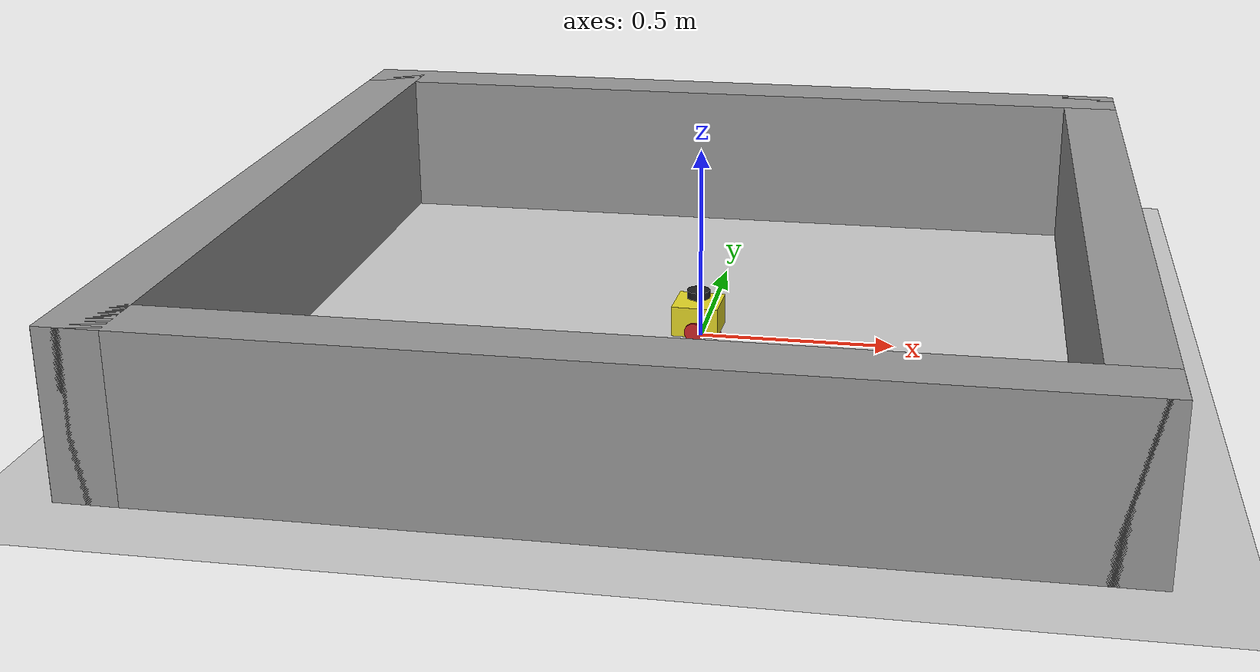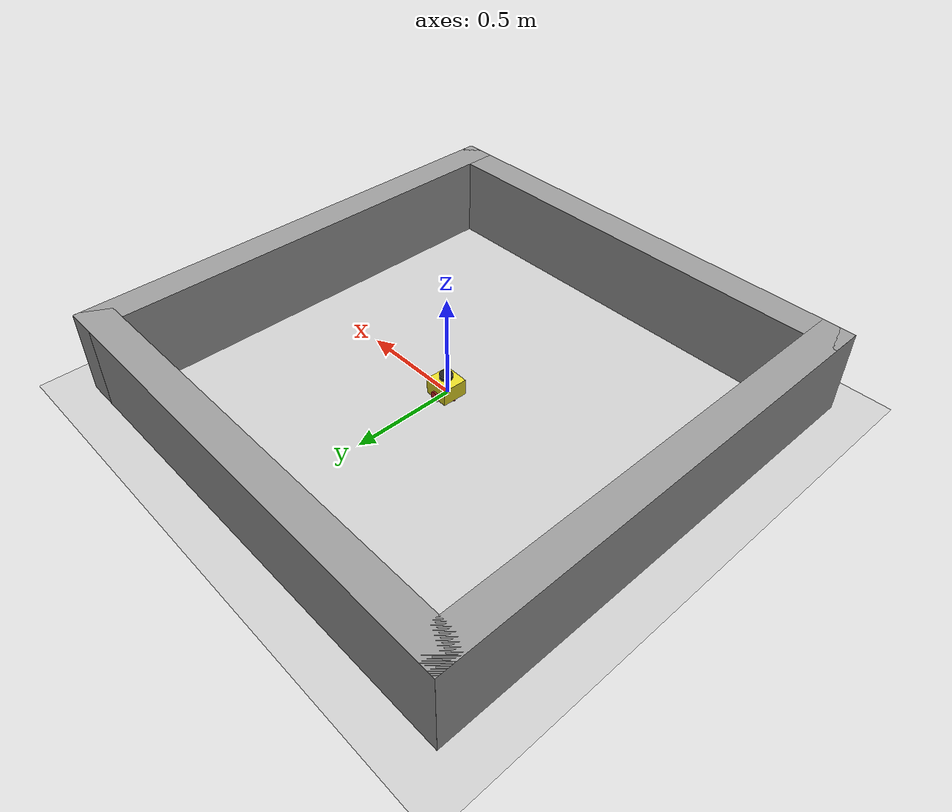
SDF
<sdf version="1.6">
 <world name="default">
  <light name="sun" type="directional">
   <pose>0 0 10 0 -0 0</pose>
   <diffuse>0.8 0.8 0.8 1</diffuse>
   <specular>0.2 0.2 0.2 1</specular>
   <attenuation>
    <range>1000</range>
    <constant>0.9</constant>
    <linear>0.01</linear>
    <quadratic>0.001</quadratic>
   </attenuation>
   <direction>-0.5 0.1 -0.9</direction>
  </light>
  <model name="ground_plane">
   <static>1</static>
   <link name="link">
    <collision name="collision">
     <geometry><plane><normal>0 0 1</normal><size>100 100</size></plane></geometry>
     <surface><friction><ode><mu>100</mu><mu2>50</mu2></ode></friction></surface>
    </collision>
    <visual name="visual">
     <cast_shadows>0</cast_shadows>
     <geometry><plane><normal>0 0 1</normal><size>100 100</size></plane></geometry>
     <material>
      <script><uri>file://media/materials/scripts/gazebo.material</uri><name>Gazebo/Grey</name></script>
     </material>
    </visual>
   </link>
  </model>
  <gravity>0 0 -9.8</gravity>
  <magnetic_field>6e-06 2.3e-05 -4.2e-05</magnetic_field>
  <atmosphere type="adiabatic"/>
  <physics name="default_physics" default="0" type="ode">
   <max_step_size>0.001</max_step_size>
   <real_time_factor>1</real_time_factor>
   <real_time_update_rate>1000</real_time_update_rate>
  </physics>
  <scene><ambient>0.4 0.4 0.4 1</ambient><background>0.7 0.7 0.7 1</background><shadows>1</shadows></scene>
  <audio><device>default</device></audio>
  <spherical_coordinates>
   <surface_model>EARTH_WGS84</surface_model>
   <latitude_deg>0</latitude_deg>
   <longitude_deg>0</longitude_deg>
   <elevation>0</elevation>
   <heading_deg>0</heading_deg>
  </spherical_coordinates>
  <model name="mycar">
   <link name="base_footprint">
    <inertial>
     <pose>0 0 0.061129 0 -0 0</pose>
     <mass>0.62</mass>
     <inertia>
      <ixx>0.00106688</ixx>
      <ixy>0</ixy>
      <ixz>0</ixz>
      <iyy>0.00106688</iyy>
      <iyz>0</iyz>
      <izz>0.000946</izz>
     </inertia>
    </inertial>
    <collision name="base_footprint_fixed_joint_lump__base_link_collision">
     <pose>0 0 0.05 0 -0 0</pose>
     <geometry><cylinder><length>0.08</length><radius>0.06</radius></cylinder></geometry>
    </collision>
    <collision name="base_footprint_fixed_joint_lump__support_collision_1">
     <pose>0 0 0.095 0 -0 0</pose>
     <geometry><cylinder><length>0.01</length><radius>0.01</radius></cylinder></geometry>
    </collision>
    <collision name="base_footprint_fixed_joint_lump__laser_collision_2">
     <pose>0 0 0.11 0 -0 0</pose>
     <geometry><cylinder><length>0.02</length><radius>0.03</radius></cylinder></geometry>
    </collision>
    <visual name="base_footprint_visual"><geometry><sphere><radius>0.001</radius></sphere></geometry></visual>
    <visual name="base_footprint_fixed_joint_lump__base_link_visual_1">
     <pose>0 0 0.05 0 -0 0</pose>
     <geometry><box><size>0.12 0.12 0.08</size></box></geometry>
     <material>
      <script><name>Gazebo/Yellow</name><uri>file://media/materials/scripts/gazebo.material</uri></script>
     </material>
    </visual>
    <visual name="base_footprint_fixed_joint_lump__support_visual_2">
     <pose>0 0 0.095 0 -0 0</pose>
     <geometry><cylinder><length>0.01</length><radius>0.01</radius></cylinder></geometry>
     <material>
      <script><name>Gazebo/White</name><uri>file://media/materials/scripts/gazebo.material</uri></script>
     </material>
    </visual>
    <visual name="base_footprint_fixed_joint_lump__laser_visual_3">
     <pose>0 0 0.11 0 -0 0</pose>
     <geometry><cylinder><length>0.02</length><radius>0.03</radius></cylinder></geometry>
     <material>
      <script><name>Gazebo/Black</name><uri>file://media/materials/scripts/gazebo.material</uri></script>
     </material>
    </visual>
   </link>
   <link name="back_wheel">
    <pose>-0.055 0 0.005 0 -0 0</pose>
    <inertial>
     <mass>0.03</mass>
     <inertia><ixx>3e-07</ixx><ixy>0</ixy><ixz>0</ixz><iyy>3e-07</iyy><iyz>0</iyz><izz>3e-07</izz></inertia>
    </inertial>
    <collision name="back_wheel_collision">
     <geometry><sphere><radius>0.005</radius></sphere></geometry>
    </collision>
    <visual name="back_wheel_visual">
     <geometry><sphere><radius>0.005</radius></sphere></geometry>
     <material>
      <script><name>Gazebo/Red</name><uri>file://media/materials/scripts/gazebo.material</uri></script>
     </material>
    </visual>
   </link>
   <joint name="back_wheel2base_link" type="revolute">
    <child>back_wheel</child>
    <parent>base_footprint</parent>
    <axis>
     <xyz>1 1 1</xyz>
     <limit><lower>-1e+16</lower><upper>1e+16</upper></limit>
     <dynamics><spring_reference>0</spring_reference><spring_stiffness>0</spring_stiffness></dynamics>
     <use_parent_model_frame>1</use_parent_model_frame>
    </axis>
   </joint>
   <link name="front_wheel">
    <pose>0.055 0 0.005 0 -0 0</pose>
    <inertial>
     <mass>0.03</mass>
     <inertia><ixx>3e-07</ixx><ixy>0</ixy><ixz>0</ixz><iyy>3e-07</iyy><iyz>0</iyz><izz>3e-07</izz></inertia>
    </inertial>
    <collision name="front_wheel_collision">
     <geometry><sphere><radius>0.005</radius></sphere></geometry>
    </collision>
    <visual name="front_wheel_visual">
     <geometry><sphere><radius>0.005</radius></sphere></geometry>
     <material>
      <script><name>Gazebo/Red</name><uri>file://media/materials/scripts/gazebo.material</uri></script>
     </material>
    </visual>
   </link>
   <joint name="front_wheel2base_link" type="revolute">
    <child>front_wheel</child>
    <parent>base_footprint</parent>
    <axis>
     <xyz>1 1 1</xyz>
     <limit><lower>-1e+16</lower><upper>1e+16</upper></limit>
     <dynamics><spring_reference>0</spring_reference><spring_stiffness>0</spring_stiffness></dynamics>
     <use_parent_model_frame>1</use_parent_model_frame>
    </axis>
   </joint>
   <link name="left_wheel">
    <pose>0 0.06 0.025 0 -0 0</pose>
    <inertial>
     <mass>0.05</mass>
     <inertia>
      <ixx>8.75e-06</ixx>
      <ixy>0</ixy>
      <ixz>0</ixz>
      <iyy>8.75e-06</iyy>
      <iyz>0</iyz>
      <izz>1.5625e-05</izz>
     </inertia>
    </inertial>
    <collision name="left_wheel_collision">
     <pose>0 0 0 1.5705 -0 0</pose>
     <geometry><cylinder><length>0.015</length><radius>0.025</radius></cylinder></geometry>
    </collision>
    <visual name="left_wheel_visual">
     <pose>0 0 0 1.5705 -0 0</pose>
     <geometry><cylinder><length>0.015</length><radius>0.025</radius></cylinder></geometry>
     <material>
      <script><name>Gazebo/Red</name><uri>file://media/materials/scripts/gazebo.material</uri></script>
     </material>
    </visual>
   </link>
   <joint name="left_wheel2base_link" type="revolute">
    <child>left_wheel</child>
    <parent>base_footprint</parent>
    <axis>
     <xyz>0 1 0</xyz>
     <limit><lower>-1e+16</lower><upper>1e+16</upper></limit>
     <dynamics><spring_reference>0</spring_reference><spring_stiffness>0</spring_stiffness></dynamics>
     <use_parent_model_frame>1</use_parent_model_frame>
    </axis>
   </joint>
   <link name="right_wheel">
    <pose>0 -0.06 0.025 0 -0 0</pose>
    <inertial>
     <mass>0.05</mass>
     <inertia>
      <ixx>8.75e-06</ixx>
      <ixy>0</ixy>
      <ixz>0</ixz>
      <iyy>8.75e-06</iyy>
      <iyz>0</iyz>
      <izz>1.5625e-05</izz>
     </inertia>
    </inertial>
    <collision name="right_wheel_collision">
     <pose>0 0 0 1.5705 -0 0</pose>
     <geometry><cylinder><length>0.015</length><radius>0.025</radius></cylinder></geometry>
    </collision>
    <visual name="right_wheel_visual">
     <pose>0 0 0 1.5705 -0 0</pose>
     <geometry><cylinder><length>0.015</length><radius>0.025</radius></cylinder></geometry>
     <material>
      <script><name>Gazebo/Red</name><uri>file://media/materials/scripts/gazebo.material</uri></script>
     </material>
    </visual>
   </link>
   <joint name="right_wheel2base_link" type="revolute">
    <child>right_wheel</child>
    <parent>base_footprint</parent>
    <axis>
     <xyz>0 1 0</xyz>
     <limit><lower>-1e+16</lower><upper>1e+16</upper></limit>
     <dynamics><spring_reference>0</spring_reference><spring_stiffness>0</spring_stiffness></dynamics>
     <use_parent_model_frame>1</use_parent_model_frame>
    </axis>
   </joint>
   <pose>-0.009527 0.016495 0 -2.4e-05 -1e-06 3.10573</pose>
  </model>
  <model name="campus">
   <pose>-0.060033 -0.013541 0 0 -0 0</pose>
   <link name="Wall_13">
    <collision name="Wall_13_Collision">
     <geometry><box><size>2.3 0.15 0.4</size></box></geometry>
     <pose>0 0 0.2 0 -0 0</pose>
    </collision>
    <visual name="Wall_13_Visual">
     <pose>0 0 0.2 0 -0 0</pose>
     <geometry><box><size>2.3 0.15 0.4</size></box></geometry>
     <material>
      <script><uri>file://media/materials/scripts/gazebo.material</uri><name>Gazebo/Grey</name></script>
      <ambient>1 1 1 1</ambient>
     </material>
     <meta><layer>0</layer></meta>
    </visual>
    <pose>-1.07525 0 0 0 -0 -1.5708</pose>
   </link>
   <link name="Wall_15">
    <collision name="Wall_15_Collision">
     <geometry><box><size>2.3 0.15 0.4</size></box></geometry>
     <pose>0 0 0.2 0 -0 0</pose>
    </collision>
    <visual name="Wall_15_Visual">
     <pose>0 0 0.2 0 -0 0</pose>
     <geometry><box><size>2.3 0.15 0.4</size></box></geometry>
     <material>
      <script><uri>file://media/materials/scripts/gazebo.material</uri><name>Gazebo/Grey</name></script>
      <ambient>1 1 1 1</ambient>
     </material>
     <meta><layer>0</layer></meta>
    </visual>
    <pose>-0 -1.075 0 0 -0 0</pose>
   </link>
   <link name="Wall_17">
    <collision name="Wall_17_Collision">
     <geometry><box><size>2.3 0.15 0.4</size></box></geometry>
     <pose>0 0 0.2 0 -0 0</pose>
    </collision>
    <visual name="Wall_17_Visual">
     <pose>0 0 0.2 0 -0 0</pose>
     <geometry><box><size>2.3 0.15 0.4</size></box></geometry>
     <material>
      <script><uri>file://media/materials/scripts/gazebo.material</uri><name>Gazebo/Grey</name></script>
      <ambient>1 1 1 1</ambient>
     </material>
     <meta><layer>0</layer></meta>
    </visual>
    <pose>1.07525 0 0 0 -0 -1.5708</pose>
   </link>
   <link name="Wall_4">
    <collision name="Wall_4_Collision">
     <geometry><box><size>2.3 0.15 0.4</size></box></geometry>
     <pose>0 0 0.2 0 -0 0</pose>
    </collision>
    <visual name="Wall_4_Visual">
     <pose>0 0 0.2 0 -0 0</pose>
     <geometry><box><size>2.3 0.15 0.4</size></box></geometry>
     <material>
      <script><uri>file://media/materials/scripts/gazebo.material</uri><name>Gazebo/Grey</name></script>
      <ambient>1 1 1 1</ambient>
     </material>
     <meta><layer>0</layer></meta>
    </visual>
    <pose>-0 1.075 0 0 -0 3.14159</pose>
   </link>
   <static>1</static>
  </model>
 </world>
</sdf>
